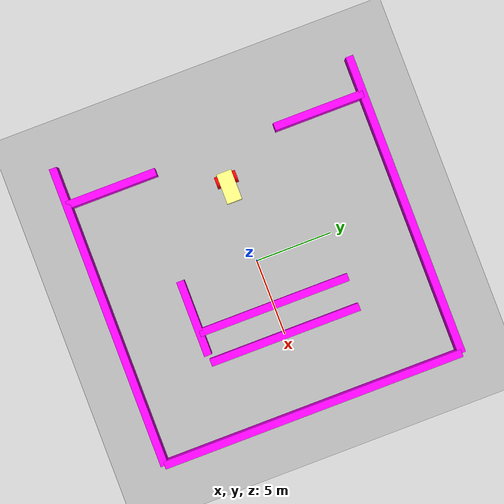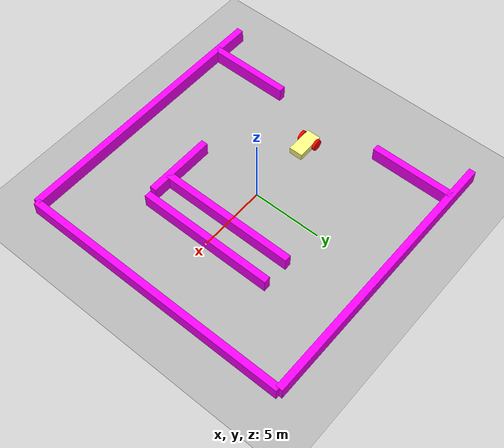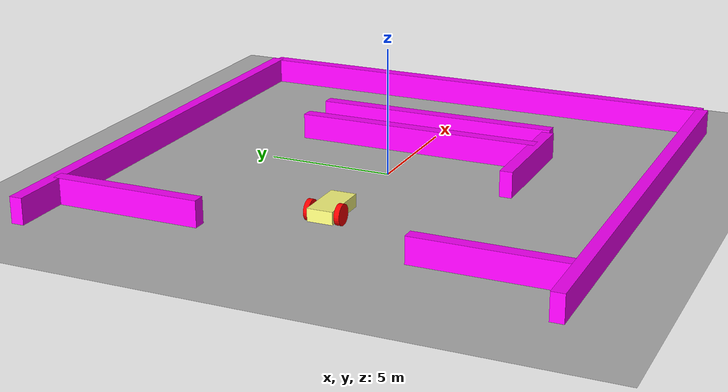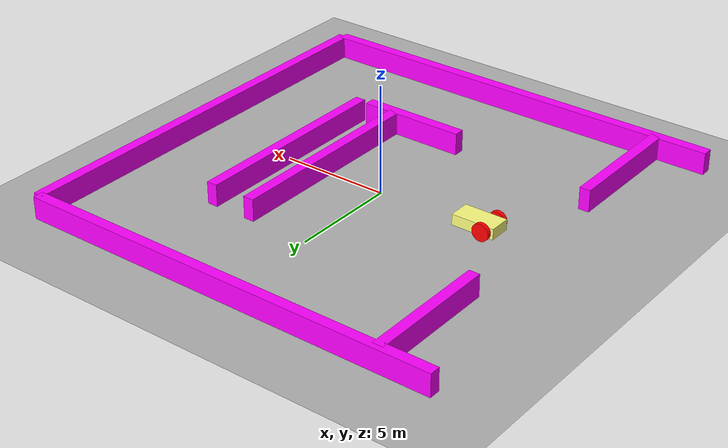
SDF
<?xml version="1.0" ?>
<sdf version="1.8">
    <world name="Moving_robot">
        <physics name="1ms" type="ignored">
            <max_step_size>0.001</max_step_size>
            <real_time_factor>1.0</real_time_factor>
        </physics>
        <plugin
            filename="libignition-gazebo-physics-system.so"
            name="ignition::gazebo::systems::Physics">
        </plugin>
        <plugin
            filename="libignition-gazebo-user-commands-system.so"
            name="ignition::gazebo::systems::UserCommands">
        </plugin>
        <plugin
            filename="libignition-gazebo-scene-broadcaster-system.so"
            name="ignition::gazebo::systems::SceneBroadcaster">
        </plugin>

        <plugin filename="libignition-gazebo-imu-system.so"
        name="ignition::gazebo::systems::Imu">
</plugin>
<plugin filename="libignition-gazebo-contact-system.so"
        name="ignition::gazebo::systems::Contact">
</plugin>
    <plugin
      filename="libignition-gazebo-sensors-system.so"
      name="ignition::gazebo::systems::Sensors">
      <render_engine>ogre2</render_engine>
    </plugin>

        <light type="directional" name="sun">
            <cast_shadows>true</cast_shadows>
            <pose>0 0 10 0 0 0</pose>
            <diffuse>0.8 0.8 0.8 1</diffuse>
            <specular>0.2 0.2 0.2 1</specular>
            <attenuation>
                <range>1000</range>
                <constant>0.9</constant>
                <linear>0.01</linear>
                <quadratic>0.001</quadratic>
            </attenuation>
            <direction>-0.5 0.1 -0.9</direction>
        </light>

        <model name="ground_plane">
            <static>true</static>
            <link name="link">
                <collision name="collision">
                <geometry>
                    <plane>
                    <normal>0 0 1</normal>
                    </plane>
                </geometry>
                </collision>
                <visual name="visual">
                <geometry>
                    <plane>
                    <normal>0 0 1</normal>
                    <size>100 100</size>
                    </plane>
                </geometry>
                <material>
                    <ambient>0.8 0.8 0.8 1</ambient>
                    <diffuse>0.7 0.7 0.7 1</diffuse>
                    <specular>0.8 0.8 0.8 1</specular>
                </material>
                </visual>
            </link>
        </model>

        <model name='vehicle_blue' canonical_link='chassis'>
            <pose relative_to='world'>0 0 0 0 0 0</pose>   <!--the pose is relative to the world by default-->

            <link name='chassis'>
                <pose relative_to='__model__'>-5 0 0.4 0 0 0</pose>
                <inertial> <!--inertial properties of the link mass, inertia matix-->
                    <mass>1.14395</mass>
                    <inertia>
                        <ixx>0.126164</ixx>
                        <ixy>0</ixy>
                        <ixz>0</ixz>
                        <iyy>0.416519</iyy>
                        <iyz>0</iyz>
                        <izz>0.481014</izz>
                    </inertia>
                </inertial>
                <visual name='visual'>
                    <geometry>
                        <box>
                            <size>2.0 1.0 0.5</size> <!--question: this size is in meter-->
                        </box>
                    </geometry>
                    <!--let's add color to our link-->
                    <material>
                        <ambient>0.0 0.0 0.1 1</ambient>
                        <diffuse>1.0 1.0 0.5 1</diffuse>
                        <specular>0.0 0.0 0.1 1</specular>
                    </material>
                </visual>
                <collision name='collision'> <!--todo: describe why we need the collision-->
                    <geometry>
                        <box>
                            <size>2.0 1.0 0.5</size>
                        </box>
                    </geometry>
                </collision>
                <sensor name="imu_sensor" type="imu">
		    <always_on>1</always_on>
		    <update_rate>1</update_rate>
		    <visualize>true</visualize>
		    <topic>imu</topic>
		</sensor>
<sensor name='gpu_lidar' type='gpu_lidar'>
    <pose relative_to='lidar_frame'>0 0 0 0 0 0</pose>
    <topic>lidar</topic>
    <update_rate>10</update_rate>
    <ray>
        <scan>
            <horizontal>
                <samples>640</samples>
                <resolution>1</resolution>
                <min_angle>-1.396263</min_angle>
                <max_angle>1.396263</max_angle>
            </horizontal>
            <vertical>
                <samples>1</samples>
                <resolution>0.01</resolution>
                <min_angle>0</min_angle>
                <max_angle>0</max_angle>
            </vertical>
        </scan>
        <range>
            <min>0.08</min>
            <max>10.0</max>
            <resolution>0.01</resolution>
        </range>
    </ray>
    <always_on>1</always_on>
    <visualize>true</visualize>
</sensor>

            </link>

            <!--let's build the left wheel-->
            <link name='left_wheel'>
                <pose relative_to="chassis">-0.5 0.6 0 -1.5707 0 0</pose> <!--angles are in radian-->
                <inertial>
                    <mass>2</mass>
                    <inertia>
                        <ixx>0.145833</ixx>
                        <ixy>0</ixy>
                        <ixz>0</ixz>
                        <iyy>0.145833</iyy>
                        <iyz>0</iyz>
                        <izz>0.125</izz>
                    </inertia>
                </inertial>
                <visual name='visual'>
                    <geometry>
                        <cylinder>
                            <radius>0.4</radius>
                            <length>0.2</length>
                        </cylinder>
                    </geometry>
                    <material>
                        <ambient>1.0 0.0 0.0 1</ambient>
                        <diffuse>1.0 0.0 0.0 1</diffuse>
                        <specular>1.0 0.0 0.0 1</specular>
                    </material>
                </visual>
                <collision name='collision'>
                    <geometry>
                        <cylinder>
                            <radius>0.4</radius>
                            <length>0.2</length>
                        </cylinder>
                    </geometry>
                </collision>
            </link>

            <!--copy and paste for right wheel but change position-->
            <link name='right_wheel'>
                <pose relative_to="chassis">-0.5 -0.6 0 -1.5707 0 0</pose> <!--angles are in radian-->
                <inertial>
                    <mass>1</mass>
                    <inertia>
                        <ixx>0.145833</ixx>
                        <ixy>0</ixy>
                        <ixz>0</ixz>
                        <iyy>0.145833</iyy>
                        <iyz>0</iyz>
                        <izz>0.125</izz>
                    </inertia>
                </inertial>
                <visual name='visual'>
                    <geometry>
                        <cylinder>
                            <radius>0.4</radius>
                            <length>0.2</length>
                        </cylinder>
                    </geometry>
                    <material>
                        <ambient>1.0 0.0 0.0 1</ambient>
                        <diffuse>1.0 0.0 0.0 1</diffuse>
                        <specular>1.0 0.0 0.0 1</specular>
                    </material>
                </visual>
                <collision name='collision'>
                    <geometry>
                        <cylinder>
                            <radius>0.4</radius>
                            <length>0.2</length>
                        </cylinder>
                    </geometry>
                </collision>
            </link>

            <frame name="caster_frame" attached_to='chassis'>
                <pose>0.8 0 -0.2 0 0 0</pose>
            </frame>

            <!--caster wheel-->
            <link name='caster'>
                <pose relative_to='caster_frame'/>
                <inertial>
                    <mass>1</mass>
                    <inertia>
                        <ixx>0.1</ixx>
                        <ixy>0</ixy>
                        <ixz>0</ixz>
                        <iyy>0.1</iyy>
                        <iyz>0</iyz>
                        <izz>0.1</izz>
                    </inertia>
                </inertial>
                <visual name='visual'>
                    <geometry>
                        <sphere>
                            <radius>0.2</radius>
                        </sphere>
                    </geometry>
                    <material>
                        <ambient>0.0 1 0.0 1</ambient>
                        <diffuse>0.0 1 0.0 1</diffuse>
                        <specular>0.0 1 0.0 1</specular>
                    </material>
                </visual>
                <collision name='collision'>
                    <geometry>
                        <sphere>
                            <radius>0.2</radius>
                        </sphere>
                    </geometry>
                </collision>
            </link>

            <!--connecting these links together using joints-->
            <joint name='left_wheel_joint' type='revolute'> <!--continous joint is not supported yet-->
                <pose relative_to='left_wheel'/>
                <parent>chassis</parent>
                <child>left_wheel</child>
                <axis>
                    <xyz expressed_in='__model__'>0 1 0</xyz> <!--can be defined as any frame or even arbitrary frames-->
                    <limit>
                        <lower>-1.79769e+308</lower>    <!--negative infinity-->
                        <upper>1.79769e+308</upper>     <!--positive infinity-->
                    </limit>
                </axis>
            </joint>

            <joint name='right_wheel_joint' type='revolute'>
                <pose relative_to='right_wheel'/>
                <parent>chassis</parent>
                <child>right_wheel</child>
                <axis>
                    <xyz expressed_in='__model__'>0 1 0</xyz>
                    <limit>
                        <lower>-1.79769e+308</lower>    <!--negative infinity-->
                        <upper>1.79769e+308</upper>     <!--positive infinity-->
                    </limit>
                </axis>
            </joint>

            <!--different type of joints ball joint--> <!--defult value is the child-->
            <joint name='caster_wheel' type='ball'>
                <parent>chassis</parent>
                <child>caster</child>
            </joint>

            <!--diff drive plugin-->
            <plugin
                filename="libignition-gazebo-diff-drive-system.so"
                name="ignition::gazebo::systems::DiffDrive">
                <left_joint>left_wheel_joint</left_joint>
                <right_joint>right_wheel_joint</right_joint>
                <wheel_separation>1.2</wheel_separation>
                <wheel_radius>0.4</wheel_radius>
                <odom_publish_frequency>1</odom_publish_frequency>
                <topic>cmd_vel</topic>
            </plugin>

            <frame name="lidar_frame" attached_to='chassis'>
    <pose>0.8 0 0.5 0 0 0</pose>
</frame>
        </model>
<model name='wall'>
    <static>true</static>
    <pose>5 0 0 0 0 0</pose><!--pose relative to the world-->
    <link name='box'>
        <pose/>
        <visual name='visual'>
            <geometry>
                <box>
                    <size>0.5 10.0 2.0</size>
                </box>
            </geometry>
            <!--let's add color to our link-->
            <material>
                <ambient>0.0 0.0 1.0 1</ambient>
                <diffuse>1.0 0.0 1.0 1</diffuse>
                <specular>0.0 0.0 1.0 1</specular>
            </material>
        </visual>
        <collision name='collision'>
            <geometry>
                <box>
                    <size>0.5 10.0 2.0</size>
                </box>
            </geometry>
        </collision>
        <sensor name='sensor_contact' type='contact'>
    <contact>
        <collision>collision</collision>
    </contact>
</sensor>
    </link>
    <plugin filename="libignition-gazebo-touchplugin-system.so"
        name="ignition::gazebo::systems::TouchPlugin">
    <target>vehicle_blue</target>
    <namespace>wall</namespace>
    <time>0.001</time>
    <enabled>true</enabled>
</plugin>
</model>
<model name='wall2'>
    <static>true</static>
    <pose>2 -5 0 0 0 0</pose><!--pose relative to the world-->
    <link name='box'>
        <pose/>
        <visual name='visual'>
            <geometry>
                <box>
                    <size>5 0.5 2.0</size>
                </box>
            </geometry>
            <!--let's add color to our link-->
            <material>
                <ambient>0.0 0.0 1.0 1</ambient>
                <diffuse>1.0 0.0 1.0 1</diffuse>
                <specular>0.0 0.0 1.0 1</specular>
            </material>
        </visual>
        <collision name='collision'>
            <geometry>
                <box>
                    <size>5 0.5 2.0</size>
                </box>
            </geometry>
        </collision>
        <sensor name='sensor_contact' type='contact'>f
    <contact>
        <collision>collision</collision>
    </contact>
</sensor>
    </link>
    <plugin filename="libignition-gazebo-touchplugin-system.so"
        name="ignition::gazebo::systems::TouchPlugin">
    <target>vehicle_blue</target>
    <namespace>wall</namespace>
    <time>0.001</time>
    <enabled>true</enabled>
</plugin>
</model>
<model name='door'>
    <static>true</static>
    <pose>3 0 0 0 0 0</pose><!--pose relative to the world-->
    <link name='box'>
        <pose/>
        <visual name='visual'>
            <geometry>
                <box>
                    <size>0.5 10.0 2.0</size>
                </box>
            </geometry>
            <!--let's add color to our link-->
            <material>
                <ambient>0.0 0.0 1.0 1</ambient>
                <diffuse>1.0 0.0 1.0 1</diffuse>
                <specular>0.0 0.0 1.0 1</specular>
            </material>
        </visual>
        <collision name='collision'>
            <geometry>
                <box>
                    <size>0.5 10.0 2.0</size>
                </box>
            </geometry>
        </collision>
            <sensor name='sensor_contact' type='contact'>
    <contact>
        <collision>collision</collision>
    </contact>
</sensor>
    </link>
    <plugin filename="libignition-gazebo-touchplugin-system.so"
        name="ignition::gazebo::systems::TouchPlugin">
    <target>vehicle_blue</target>
    <namespace>wall</namespace>
    <time>0.001</time>
    <enabled>true</enabled>
</plugin>
</model>

<model name='outerwallright'>
    <static>true</static>
    <pose>0 -10 0 0 0 0</pose><!--pose relative to the world-->
    <link name='box'>
        <pose/>
        <visual name='visual'>
            <geometry>
                <box>
                    <size>20 0.5 2.0</size>
                </box>
            </geometry>
            <!--let's add color to our link-->
            <material>
                <ambient>0.0 0.0 1.0 1</ambient>
                <diffuse>1.0 0.0 1.0 1</diffuse>
                <specular>0.0 0.0 1.0 1</specular>
            </material>
        </visual>
        <collision name='collision'>
            <geometry>
                <box>
                    <size>20 0.5 2.0</size>
                </box>
            </geometry>
        </collision>
        <sensor name='sensor_contact' type='contact'>
    <contact>
        <collision>collision</collision>
    </contact>
</sensor>
    </link>
    <plugin filename="libignition-gazebo-touchplugin-system.so"
        name="ignition::gazebo::systems::TouchPlugin">
    <target>vehicle_blue</target>
    <namespace>wall</namespace>
    <time>0.001</time>
    <enabled>true</enabled>
</plugin>
</model>
<model name='outerwallleft'>
    <static>true</static>
    <pose>0 10 0 0 0 0</pose><!--pose relative to the world-->
    <link name='box'>
        <pose/>
        <visual name='visual'>
            <geometry>
                <box>
                    <size>20 0.5 2.0</size>
                </box>
            </geometry>
            <!--let's add color to our link-->
            <material>
                <ambient>0.0 0.0 1.0 1</ambient>
                <diffuse>1.0 0.0 1.0 1</diffuse>
                <specular>0.0 0.0 1.0 1</specular>
            </material>
        </visual>
        <collision name='collision'>
            <geometry>
                <box>
                    <size>20 0.5 2.0</size>
                </box>
            </geometry>
        </collision>
        <sensor name='sensor_contact' type='contact'>
    <contact>
        <collision>collision</collision>
    </contact>
</sensor>
    </link>
    <plugin filename="libignition-gazebo-touchplugin-system.so"
        name="ignition::gazebo::systems::TouchPlugin">
    <target>vehicle_blue</target>
    <namespace>wall</namespace>
    <time>0.001</time>
    <enabled>true</enabled>
</plugin>
</model>
<model name='outerwallfront1'>
    <static>true</static>
    <pose>-7.5 -7 0 0 0 0</pose><!--pose relative to the world-->
    <link name='box'>
        <pose/>
        <visual name='visual'>
            <geometry>
                <box>
                    <size>0.5 6 2.0</size>
                </box>
            </geometry>
            <!--let's add color to our link-->
            <material>
                <ambient>0.0 0.0 1.0 1</ambient>
                <diffuse>1.0 0.0 1.0 1</diffuse>
                <specular>0.0 0.0 1.0 1</specular>
            </material>
        </visual>
        <collision name='collision'>
            <geometry>
                <box>
                    <size>0.5 6 2.0</size>
                </box>
            </geometry>
        </collision>
        <sensor name='sensor_contact' type='contact'>
    <contact>
        <collision>collision</collision>
    </contact>
</sensor>
    </link>
    <plugin filename="libignition-gazebo-touchplugin-system.so"
        name="ignition::gazebo::systems::TouchPlugin">
    <target>vehicle_blue</target>
    <namespace>wall</namespace>
    <time>0.001</time>
    <enabled>true</enabled>
</plugin>
</model>
<model name='outerwallfront2'>
    <static>true</static>
    <pose>-7.5 7 0 0 0 0</pose><!--pose relative to the world-->
    <link name='box'>
        <pose/>
        <visual name='visual'>
            <geometry>
                <box>
                    <size>0.5 6 2.0</size>
                </box>
            </geometry>
            <!--let's add color to our link-->
            <material>
                <ambient>0.0 0.0 1.0 1</ambient>
                <diffuse>1.0 0.0 1.0 1</diffuse>
                <specular>0.0 0.0 1.0 1</specular>
            </material>
        </visual>
        <collision name='collision'>
            <geometry>
                <box>
                    <size>0.5 6 2.0</size>
                </box>
            </geometry>
        </collision>
        <sensor name='sensor_contact' type='contact'>
    <contact>
        <collision>collision</collision>
    </contact>
</sensor>
    </link>
    <plugin filename="libignition-gazebo-touchplugin-system.so"
        name="ignition::gazebo::systems::TouchPlugin">
    <target>vehicle_blue</target>
    <namespace>wall</namespace>
    <time>0.001</time>
    <enabled>true</enabled>
</plugin>
</model>
<model name='outerwallbehind'>
    <static>true</static>
    <pose>10 0 0 0 0 0</pose><!--pose relative to the world-->
    <link name='box'>
        <pose/>
        <visual name='visual'>
            <geometry>
                <box>
                    <size>0.5 20 2.0</size>
                </box>
            </geometry>
            <!--let's add color to our link-->
            <material>
                <ambient>0.0 0.0 1.0 1</ambient>
                <diffuse>1.0 0.0 1.0 1</diffuse>
                <specular>0.0 0.0 1.0 1</specular>
            </material>
        </visual>
        <collision name='collision'>
            <geometry>
                <box>
                    <size>0.5 20 2.0</size>
                </box>
            </geometry>
        </collision>
        <sensor name='sensor_contact' type='contact'>
    <contact>
        <collision>collision</collision>
    </contact>
</sensor>
    </link>
    <plugin filename="libignition-gazebo-touchplugin-system.so"
        name="ignition::gazebo::systems::TouchPlugin">
    <target>vehicle_blue</target>
    <namespace>wall</namespace>
    <time>0.001</time>
    <enabled>true</enabled>
</plugin>
</model>
    </world>
</sdf>

<!-- Reference
https://gazebosim.org/docs/fortress -->
